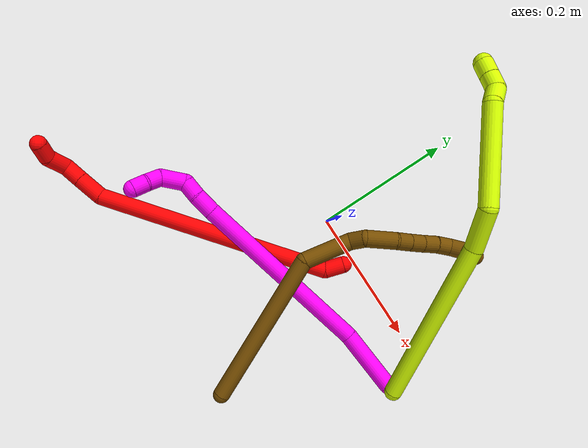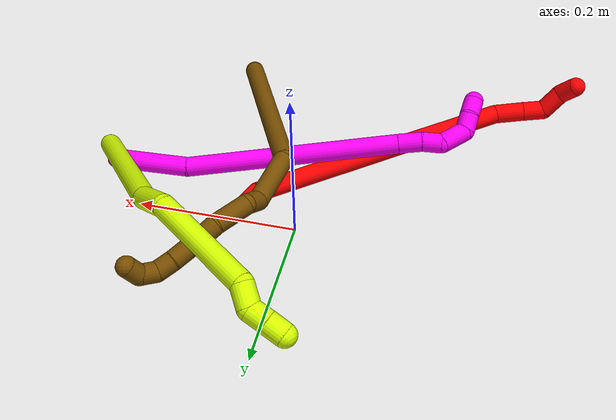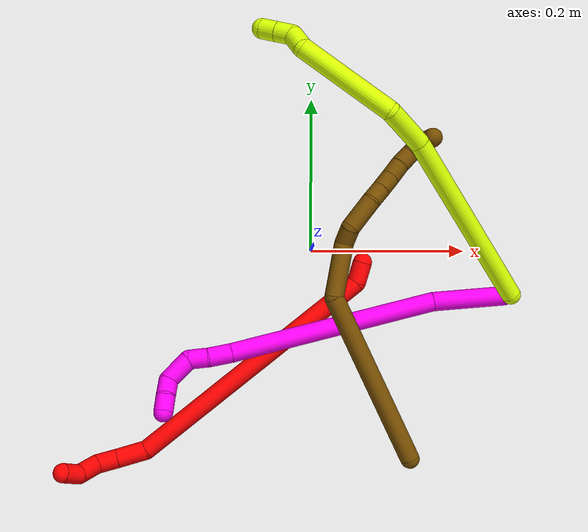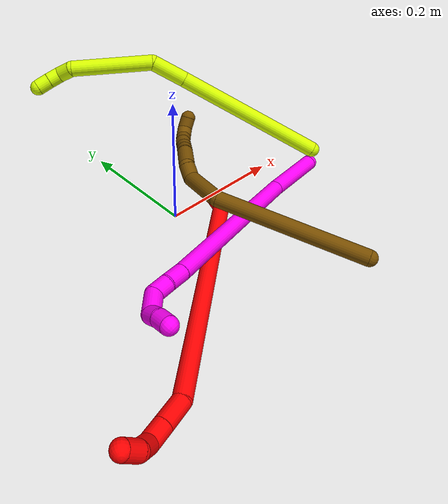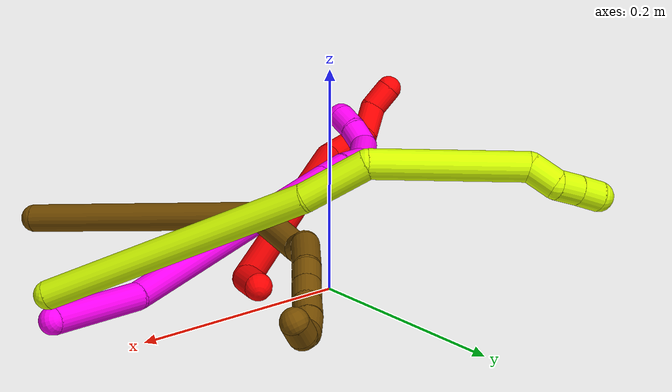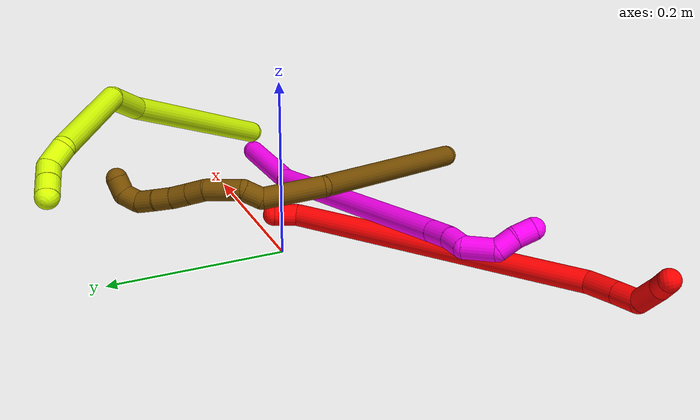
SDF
<sdf version="1.7">
 <world name="default">
  <model name="2">
   <static>0</static>
   <link name="2">
    <collision name="collision-cylinder-e_1_1_4">
     <pose>0.003187 -0.005518 0.012371 0.419567 0.231085 0.049412</pose>
     <geometry><cylinder><radius>0.0125</radius><length>0.027832</length></cylinder></geometry>
     <surface>
      <friction><ode><mu>1.16</mu><mu2>1.16</mu2><slip1>0</slip1><slip2>0</slip2></ode></friction>
      <contact><ode><kp>1e+06</kp><kd>1</kd><max_vel>0</max_vel><min_depth>0.001</min_depth></ode></contact>
     </surface>
    </collision>
    <visual name="visual-cylinder-e_1_1_4">
     <pose>0.003187 -0.005518 0.012371 0.419567 0.231085 0.049412</pose>
     <geometry><cylinder><radius>0.0125</radius><length>0.027832</length></cylinder></geometry>
     <material><ambient>1 0 0 1</ambient></material>
    </visual>
    <collision name="collision-cylinder-e_2_4_5">
     <pose>-0.052837 -0.045194 0.185352 0.209551 -0.346088 -0.036758</pose>
     <geometry><cylinder><radius>0.0125</radius><length>0.349103</length></cylinder></geometry>
     <surface>
      <friction><ode><mu>1.16</mu><mu2>1.16</mu2><slip1>0</slip1><slip2>0</slip2></ode></friction>
      <contact><ode><kp>1e+06</kp><kd>1</kd><max_vel>0</max_vel><min_depth>0.001</min_depth></ode></contact>
     </surface>
    </collision>
    <visual name="visual-cylinder-e_2_4_5">
     <pose>-0.052837 -0.045194 0.185352 0.209551 -0.346088 -0.036758</pose>
     <geometry><cylinder><radius>0.0125</radius><length>0.349103</length></cylinder></geometry>
     <material><ambient>1 0 0 1</ambient></material>
    </visual>
    <collision name="collision-cylinder-e_3_5_6">
     <pose>-0.124274 -0.079063 0.360555 -0.019701 -0.697224 0.007161</pose>
     <geometry><cylinder><radius>0.0125</radius><length>0.03808</length></cylinder></geometry>
     <surface>
      <friction><ode><mu>1.16</mu><mu2>1.16</mu2><slip1>0</slip1><slip2>0</slip2></ode></friction>
      <contact><ode><kp>1e+06</kp><kd>1</kd><max_vel>0</max_vel><min_depth>0.001</min_depth></ode></contact>
     </surface>
    </collision>
    <visual name="visual-cylinder-e_3_5_6">
     <pose>-0.124274 -0.079063 0.360555 -0.019701 -0.697224 0.007161</pose>
     <geometry><cylinder><radius>0.0125</radius><length>0.03808</length></cylinder></geometry>
     <material><ambient>1 0 0 1</ambient></material>
    </visual>
    <collision name="collision-cylinder-e_4_6_7">
     <pose>-0.145666 -0.078719 0.385687 -0.005376 -0.715922 0.002011</pose>
     <geometry><cylinder><radius>0.0125</radius><length>0.027936</length></cylinder></geometry>
     <surface>
      <friction><ode><mu>1.16</mu><mu2>1.16</mu2><slip1>0</slip1><slip2>0</slip2></ode></friction>
      <contact><ode><kp>1e+06</kp><kd>1</kd><max_vel>0</max_vel><min_depth>0.001</min_depth></ode></contact>
     </surface>
    </collision>
    <visual name="visual-cylinder-e_4_6_7">
     <pose>-0.145666 -0.078719 0.385687 -0.005376 -0.715922 0.002011</pose>
     <geometry><cylinder><radius>0.0125</radius><length>0.027936</length></cylinder></geometry>
     <material><ambient>1 0 0 1</ambient></material>
    </visual>
    <collision name="collision-cylinder-e_5_7_8">
     <pose>-0.157589 -0.069385 0.408809 -0.635322 -0.17445 0.057489</pose>
     <geometry><cylinder><radius>0.0125</radius><length>0.03175</length></cylinder></geometry>
     <surface>
      <friction><ode><mu>1.16</mu><mu2>1.16</mu2><slip1>0</slip1><slip2>0</slip2></ode></friction>
      <contact><ode><kp>1e+06</kp><kd>1</kd><max_vel>0</max_vel><min_depth>0.001</min_depth></ode></contact>
     </surface>
    </collision>
    <visual name="visual-cylinder-e_5_7_8">
     <pose>-0.157589 -0.069385 0.408809 -0.635322 -0.17445 0.057489</pose>
     <geometry><cylinder><radius>0.0125</radius><length>0.03175</length></cylinder></geometry>
     <material><ambient>1 0 0 1</ambient></material>
    </visual>
    <collision name="collision-cylinder-e_6_8_2">
     <pose>-0.166575 -0.050784 0.427248 -1.01003 -0.515039 0.289164</pose>
     <geometry><cylinder><radius>0.0125</radius><length>0.0253</length></cylinder></geometry>
     <surface>
      <friction><ode><mu>1.16</mu><mu2>1.16</mu2><slip1>0</slip1><slip2>0</slip2></ode></friction>
      <contact><ode><kp>1e+06</kp><kd>1</kd><max_vel>0</max_vel><min_depth>0.001</min_depth></ode></contact>
     </surface>
    </collision>
    <visual name="visual-cylinder-e_6_8_2">
     <pose>-0.166575 -0.050784 0.427248 -1.01003 -0.515039 0.289164</pose>
     <geometry><cylinder><radius>0.0125</radius><length>0.0253</length></cylinder></geometry>
     <material><ambient>1 0 0 1</ambient></material>
    </visual>
    <collision name="collision-sphere-2">
     <pose>-0.172806 -0.041461 0.433103 0 -0 0</pose>
     <geometry><sphere><radius>0.0125</radius></sphere></geometry>
     <surface>
      <friction><ode><mu>1.16</mu><mu2>1.16</mu2><slip1>0</slip1><slip2>0</slip2></ode></friction>
      <contact><ode><kp>1e+06</kp><kd>1</kd><max_vel>0</max_vel><min_depth>0.001</min_depth></ode></contact>
     </surface>
    </collision>
    <visual name="visual-sphere-2">
     <pose>-0.172806 -0.041461 0.433103 0 -0 0</pose>
     <geometry><sphere><radius>0.0125</radius></sphere></geometry>
     <material><ambient>1 0 0 1</ambient></material>
    </visual>
    <collision name="collision-sphere-4">
     <pose>0.006374 -0.011036 0.024742 0 -0 0</pose>
     <geometry><sphere><radius>0.0125</radius></sphere></geometry>
     <surface>
      <friction><ode><mu>1.16</mu><mu2>1.16</mu2><slip1>0</slip1><slip2>0</slip2></ode></friction>
      <contact><ode><kp>1e+06</kp><kd>1</kd><max_vel>0</max_vel><min_depth>0.001</min_depth></ode></contact>
     </surface>
    </collision>
    <visual name="visual-sphere-4">
     <pose>0.006374 -0.011036 0.024742 0 -0 0</pose>
     <geometry><sphere><radius>0.0125</radius></sphere></geometry>
     <material><ambient>1 0 0 1</ambient></material>
    </visual>
    <collision name="collision-sphere-1">
     <geometry><sphere><radius>0.0125</radius></sphere></geometry>
     <surface>
      <friction><ode><mu>1.16</mu><mu2>1.16</mu2><slip1>0</slip1><slip2>0</slip2></ode></friction>
      <contact><ode><kp>1e+06</kp><kd>1</kd><max_vel>0</max_vel><min_depth>0.001</min_depth></ode></contact>
     </surface>
    </collision>
    <visual name="visual-sphere-1">
     <geometry><sphere><radius>0.0125</radius></sphere></geometry>
     <material><ambient>1 0 0 1</ambient></material>
    </visual>
    <collision name="collision-sphere-8">
     <pose>-0.160344 -0.060107 0.421393 0 -0 0</pose>
     <geometry><sphere><radius>0.0125</radius></sphere></geometry>
     <surface>
      <friction><ode><mu>1.16</mu><mu2>1.16</mu2><slip1>0</slip1><slip2>0</slip2></ode></friction>
      <contact><ode><kp>1e+06</kp><kd>1</kd><max_vel>0</max_vel><min_depth>0.001</min_depth></ode></contact>
     </surface>
    </collision>
    <visual name="visual-sphere-8">
     <pose>-0.160344 -0.060107 0.421393 0 -0 0</pose>
     <geometry><sphere><radius>0.0125</radius></sphere></geometry>
     <material><ambient>1 0 0 1</ambient></material>
    </visual>
    <collision name="collision-sphere-5">
     <pose>-0.112048 -0.079351 0.345961 0 -0 0</pose>
     <geometry><sphere><radius>0.0125</radius></sphere></geometry>
     <surface>
      <friction><ode><mu>1.16</mu><mu2>1.16</mu2><slip1>0</slip1><slip2>0</slip2></ode></friction>
      <contact><ode><kp>1e+06</kp><kd>1</kd><max_vel>0</max_vel><min_depth>0.001</min_depth></ode></contact>
     </surface>
    </collision>
    <visual name="visual-sphere-5">
     <pose>-0.112048 -0.079351 0.345961 0 -0 0</pose>
     <geometry><sphere><radius>0.0125</radius></sphere></geometry>
     <material><ambient>1 0 0 1</ambient></material>
    </visual>
    <collision name="collision-sphere-6">
     <pose>-0.136499 -0.078776 0.375149 0 -0 0</pose>
     <geometry><sphere><radius>0.0125</radius></sphere></geometry>
     <surface>
      <friction><ode><mu>1.16</mu><mu2>1.16</mu2><slip1>0</slip1><slip2>0</slip2></ode></friction>
      <contact><ode><kp>1e+06</kp><kd>1</kd><max_vel>0</max_vel><min_depth>0.001</min_depth></ode></contact>
     </surface>
    </collision>
    <visual name="visual-sphere-6">
     <pose>-0.136499 -0.078776 0.375149 0 -0 0</pose>
     <geometry><sphere><radius>0.0125</radius></sphere></geometry>
     <material><ambient>1 0 0 1</ambient></material>
    </visual>
    <collision name="collision-sphere-7">
     <pose>-0.154834 -0.078663 0.396226 0 -0 0</pose>
     <geometry><sphere><radius>0.0125</radius></sphere></geometry>
     <surface>
      <friction><ode><mu>1.16</mu><mu2>1.16</mu2><slip1>0</slip1><slip2>0</slip2></ode></friction>
      <contact><ode><kp>1e+06</kp><kd>1</kd><max_vel>0</max_vel><min_depth>0.001</min_depth></ode></contact>
     </surface>
    </collision>
    <visual name="visual-sphere-7">
     <pose>-0.154834 -0.078663 0.396226 0 -0 0</pose>
     <geometry><sphere><radius>0.0125</radius></sphere></geometry>
     <material><ambient>1 0 0 1</ambient></material>
    </visual>
    <inertial>
     <pose>-0.072753 -0.049257 0.226689 0 -0 0</pose>
     <mass>0.5</mass>
     <inertia>
      <ixx>0.003226</ixx>
      <ixy>0</ixy>
      <ixz>0</ixz>
      <iyy>0.003379</iyy>
      <iyz>0</iyz>
      <izz>0.001942</izz>
     </inertia>
    </inertial>
   </link>
   <pose>0.067008 -0.015448 0.013324 1.27621 -0.231324 -0.541096</pose>
  </model>
  <model name="10">
   <static>0</static>
   <link name="10">
    <collision name="collision-cylinder-e_1_1_4">
     <pose>-0.04623 -0.003221 0.003033 0.815415 -1.47538 -0.748128</pose>
     <geometry><cylinder><radius>0.0125</radius><length>0.092882</length></cylinder></geometry>
     <surface>
      <friction><ode><mu>1.16</mu><mu2>1.16</mu2><slip1>0</slip1><slip2>0</slip2></ode></friction>
      <contact><ode><kp>1e+06</kp><kd>1</kd><max_vel>0</max_vel><min_depth>0.001</min_depth></ode></contact>
     </surface>
    </collision>
    <visual name="visual-cylinder-e_1_1_4">
     <pose>-0.04623 -0.003221 0.003033 0.815415 -1.47538 -0.748128</pose>
     <geometry><cylinder><radius>0.0125</radius><length>0.092882</length></cylinder></geometry>
     <material><ambient>1 0 0.964706 1</ambient></material>
    </visual>
    <collision name="collision-cylinder-e_2_4_5">
     <pose>-0.223061 -0.044155 0.003793 1.63101 -1.2892 -1.34753</pose>
     <geometry><cylinder><radius>0.0125</radius><length>0.271912</length></cylinder></geometry>
     <surface>
      <friction><ode><mu>1.16</mu><mu2>1.16</mu2><slip1>0</slip1><slip2>0</slip2></ode></friction>
      <contact><ode><kp>1e+06</kp><kd>1</kd><max_vel>0</max_vel><min_depth>0.001</min_depth></ode></contact>
     </surface>
    </collision>
    <visual name="visual-cylinder-e_2_4_5">
     <pose>-0.223061 -0.044155 0.003793 1.63101 -1.2892 -1.34753</pose>
     <geometry><cylinder><radius>0.0125</radius><length>0.271912</length></cylinder></geometry>
     <material><ambient>1 0 0.964706 1</ambient></material>
    </visual>
    <collision name="collision-cylinder-e_3_5_6">
     <pose>-0.368104 -0.085945 0.002155 1.41609 -1.29244 -1.14677</pose>
     <geometry><cylinder><radius>0.0125</radius><length>0.030041</length></cylinder></geometry>
     <surface>
      <friction><ode><mu>1.16</mu><mu2>1.16</mu2><slip1>0</slip1><slip2>0</slip2></ode></friction>
      <contact><ode><kp>1e+06</kp><kd>1</kd><max_vel>0</max_vel><min_depth>0.001</min_depth></ode></contact>
     </surface>
    </collision>
    <visual name="visual-cylinder-e_3_5_6">
     <pose>-0.368104 -0.085945 0.002155 1.41609 -1.29244 -1.14677</pose>
     <geometry><cylinder><radius>0.0125</radius><length>0.030041</length></cylinder></geometry>
     <material><ambient>1 0 0.964706 1</ambient></material>
    </visual>
    <collision name="collision-cylinder-e_4_6_7">
     <pose>-0.394839 -0.091197 0.003468 1.04783 -1.461 -0.95522</pose>
     <geometry><cylinder><radius>0.0125</radius><length>0.024733</length></cylinder></geometry>
     <surface>
      <friction><ode><mu>1.16</mu><mu2>1.16</mu2><slip1>0</slip1><slip2>0</slip2></ode></friction>
      <contact><ode><kp>1e+06</kp><kd>1</kd><max_vel>0</max_vel><min_depth>0.001</min_depth></ode></contact>
     </surface>
    </collision>
    <visual name="visual-cylinder-e_4_6_7">
     <pose>-0.394839 -0.091197 0.003468 1.04783 -1.461 -0.95522</pose>
     <geometry><cylinder><radius>0.0125</radius><length>0.024733</length></cylinder></geometry>
     <material><ambient>1 0 0.964706 1</ambient></material>
    </visual>
    <collision name="collision-cylinder-e_5_7_8">
     <pose>-0.420914 -0.100197 -0.004826 2.42425 -0.858352 -1.76892</pose>
     <geometry><cylinder><radius>0.0125</radius><length>0.036424</length></cylinder></geometry>
     <surface>
      <friction><ode><mu>1.16</mu><mu2>1.16</mu2><slip1>0</slip1><slip2>0</slip2></ode></friction>
      <contact><ode><kp>1e+06</kp><kd>1</kd><max_vel>0</max_vel><min_depth>0.001</min_depth></ode></contact>
     </surface>
    </collision>
    <visual name="visual-cylinder-e_5_7_8">
     <pose>-0.420914 -0.100197 -0.004826 2.42425 -0.858352 -1.76892</pose>
     <geometry><cylinder><radius>0.0125</radius><length>0.036424</length></cylinder></geometry>
     <material><ambient>1 0 0.964706 1</ambient></material>
    </visual>
    <collision name="collision-cylinder-e_6_8_9">
     <pose>-0.436163 -0.117509 -0.019585 2.1186 -0.131313 -0.233209</pose>
     <geometry><cylinder><radius>0.0125</radius><length>0.022417</length></cylinder></geometry>
     <surface>
      <friction><ode><mu>1.16</mu><mu2>1.16</mu2><slip1>0</slip1><slip2>0</slip2></ode></friction>
      <contact><ode><kp>1e+06</kp><kd>1</kd><max_vel>0</max_vel><min_depth>0.001</min_depth></ode></contact>
     </surface>
    </collision>
    <visual name="visual-cylinder-e_6_8_9">
     <pose>-0.436163 -0.117509 -0.019585 2.1186 -0.131313 -0.233209</pose>
     <geometry><cylinder><radius>0.0125</radius><length>0.022417</length></cylinder></geometry>
     <material><ambient>1 0 0.964706 1</ambient></material>
    </visual>
    <collision name="collision-cylinder-e_7_9_2">
     <pose>-0.439504 -0.134607 -0.032793 2.34351 -0.174416 -0.408894</pose>
     <geometry><cylinder><radius>0.0125</radius><length>0.02159</length></cylinder></geometry>
     <surface>
      <friction><ode><mu>1.16</mu><mu2>1.16</mu2><slip1>0</slip1><slip2>0</slip2></ode></friction>
      <contact><ode><kp>1e+06</kp><kd>1</kd><max_vel>0</max_vel><min_depth>0.001</min_depth></ode></contact>
     </surface>
    </collision>
    <visual name="visual-cylinder-e_7_9_2">
     <pose>-0.439504 -0.134607 -0.032793 2.34351 -0.174416 -0.408894</pose>
     <geometry><cylinder><radius>0.0125</radius><length>0.02159</length></cylinder></geometry>
     <material><ambient>1 0 0.964706 1</ambient></material>
    </visual>
    <collision name="collision-sphere-2">
     <pose>-0.441378 -0.142219 -0.040215 0 -0 0</pose>
     <geometry><sphere><radius>0.0125</radius></sphere></geometry>
     <surface>
      <friction><ode><mu>1.16</mu><mu2>1.16</mu2><slip1>0</slip1><slip2>0</slip2></ode></friction>
      <contact><ode><kp>1e+06</kp><kd>1</kd><max_vel>0</max_vel><min_depth>0.001</min_depth></ode></contact>
     </surface>
    </collision>
    <visual name="visual-sphere-2">
     <pose>-0.441378 -0.142219 -0.040215 0 -0 0</pose>
     <geometry><sphere><radius>0.0125</radius></sphere></geometry>
     <material><ambient>1 0 0.964706 1</ambient></material>
    </visual>
    <collision name="collision-sphere-9">
     <pose>-0.437631 -0.126995 -0.025372 0 -0 0</pose>
     <geometry><sphere><radius>0.0125</radius></sphere></geometry>
     <surface>
      <friction><ode><mu>1.16</mu><mu2>1.16</mu2><slip1>0</slip1><slip2>0</slip2></ode></friction>
      <contact><ode><kp>1e+06</kp><kd>1</kd><max_vel>0</max_vel><min_depth>0.001</min_depth></ode></contact>
     </surface>
    </collision>
    <visual name="visual-sphere-9">
     <pose>-0.437631 -0.126995 -0.025372 0 -0 0</pose>
     <geometry><sphere><radius>0.0125</radius></sphere></geometry>
     <material><ambient>1 0 0.964706 1</ambient></material>
    </visual>
    <collision name="collision-sphere-4">
     <pose>-0.09246 -0.006442 0.006067 0 -0 0</pose>
     <geometry><sphere><radius>0.0125</radius></sphere></geometry>
     <surface>
      <friction><ode><mu>1.16</mu><mu2>1.16</mu2><slip1>0</slip1><slip2>0</slip2></ode></friction>
      <contact><ode><kp>1e+06</kp><kd>1</kd><max_vel>0</max_vel><min_depth>0.001</min_depth></ode></contact>
     </surface>
    </collision>
    <visual name="visual-sphere-4">
     <pose>-0.09246 -0.006442 0.006067 0 -0 0</pose>
     <geometry><sphere><radius>0.0125</radius></sphere></geometry>
     <material><ambient>1 0 0.964706 1</ambient></material>
    </visual>
    <collision name="collision-sphere-1">
     <geometry><sphere><radius>0.0125</radius></sphere></geometry>
     <surface>
      <friction><ode><mu>1.16</mu><mu2>1.16</mu2><slip1>0</slip1><slip2>0</slip2></ode></friction>
      <contact><ode><kp>1e+06</kp><kd>1</kd><max_vel>0</max_vel><min_depth>0.001</min_depth></ode></contact>
     </surface>
    </collision>
    <visual name="visual-sphere-1">
     <geometry><sphere><radius>0.0125</radius></sphere></geometry>
     <material><ambient>1 0 0.964706 1</ambient></material>
    </visual>
    <collision name="collision-sphere-8">
     <pose>-0.434696 -0.108023 -0.013797 0 -0 0</pose>
     <geometry><sphere><radius>0.0125</radius></sphere></geometry>
     <surface>
      <friction><ode><mu>1.16</mu><mu2>1.16</mu2><slip1>0</slip1><slip2>0</slip2></ode></friction>
      <contact><ode><kp>1e+06</kp><kd>1</kd><max_vel>0</max_vel><min_depth>0.001</min_depth></ode></contact>
     </surface>
    </collision>
    <visual name="visual-sphere-8">
     <pose>-0.434696 -0.108023 -0.013797 0 -0 0</pose>
     <geometry><sphere><radius>0.0125</radius></sphere></geometry>
     <material><ambient>1 0 0.964706 1</ambient></material>
    </visual>
    <collision name="collision-sphere-5">
     <pose>-0.353662 -0.081867 0.001519 0 -0 0</pose>
     <geometry><sphere><radius>0.0125</radius></sphere></geometry>
     <surface>
      <friction><ode><mu>1.16</mu><mu2>1.16</mu2><slip1>0</slip1><slip2>0</slip2></ode></friction>
      <contact><ode><kp>1e+06</kp><kd>1</kd><max_vel>0</max_vel><min_depth>0.001</min_depth></ode></contact>
     </surface>
    </collision>
    <visual name="visual-sphere-5">
     <pose>-0.353662 -0.081867 0.001519 0 -0 0</pose>
     <geometry><sphere><radius>0.0125</radius></sphere></geometry>
     <material><ambient>1 0 0.964706 1</ambient></material>
    </visual>
    <collision name="collision-sphere-6">
     <pose>-0.382547 -0.090023 0.002791 0 -0 0</pose>
     <geometry><sphere><radius>0.0125</radius></sphere></geometry>
     <surface>
      <friction><ode><mu>1.16</mu><mu2>1.16</mu2><slip1>0</slip1><slip2>0</slip2></ode></friction>
      <contact><ode><kp>1e+06</kp><kd>1</kd><max_vel>0</max_vel><min_depth>0.001</min_depth></ode></contact>
     </surface>
    </collision>
    <visual name="visual-sphere-6">
     <pose>-0.382547 -0.090023 0.002791 0 -0 0</pose>
     <geometry><sphere><radius>0.0125</radius></sphere></geometry>
     <material><ambient>1 0 0.964706 1</ambient></material>
    </visual>
    <collision name="collision-sphere-7">
     <pose>-0.407131 -0.092371 0.004145 0 -0 0</pose>
     <geometry><sphere><radius>0.0125</radius></sphere></geometry>
     <surface>
      <friction><ode><mu>1.16</mu><mu2>1.16</mu2><slip1>0</slip1><slip2>0</slip2></ode></friction>
      <contact><ode><kp>1e+06</kp><kd>1</kd><max_vel>0</max_vel><min_depth>0.001</min_depth></ode></contact>
     </surface>
    </collision>
    <visual name="visual-sphere-7">
     <pose>-0.407131 -0.092371 0.004145 0 -0 0</pose>
     <geometry><sphere><radius>0.0125</radius></sphere></geometry>
     <material><ambient>1 0 0.964706 1</ambient></material>
    </visual>
    <inertial>
     <pose>-0.240737 -0.052666 0.000281 0 -0 0</pose>
     <mass>0.5</mass>
     <inertia>
      <ixx>-0.00039</ixx>
      <ixy>0</ixy>
      <ixz>0</ixz>
      <iyy>0.001153</iyy>
      <iyz>0</iyz>
      <izz>0.002175</izz>
     </inertia>
    </inertial>
   </link>
   <pose>0.251628 -0.058437 0.014696 -1.13408 -0.122734 0.115239</pose>
  </model>
  <model name="12">
   <static>0</static>
   <link name="12">
    <collision name="collision-cylinder-e_1_1_4">
     <pose>-0.030357 0.103913 -0.042942 -1.96267 -0.263706 0.391535</pose>
     <geometry><cylinder><radius>0.0125</radius><length>0.232925</length></cylinder></geometry>
     <surface>
      <friction><ode><mu>1.16</mu><mu2>1.16</mu2><slip1>0</slip1><slip2>0</slip2></ode></friction>
      <contact><ode><kp>1e+06</kp><kd>1</kd><max_vel>0</max_vel><min_depth>0.001</min_depth></ode></contact>
     </surface>
    </collision>
    <visual name="visual-cylinder-e_1_1_4">
     <pose>-0.030357 0.103913 -0.042942 -1.96267 -0.263706 0.391535</pose>
     <geometry><cylinder><radius>0.0125</radius><length>0.232925</length></cylinder></geometry>
     <material><ambient>0.466667 0.301961 0 1</ambient></material>
    </visual>
    <collision name="collision-cylinder-e_2_4_5">
     <pose>-0.047425 0.234933 -0.105276 -2.19176 0.379436 -0.714867</pose>
     <geometry><cylinder><radius>0.0125</radius><length>0.07176</length></cylinder></geometry>
     <surface>
      <friction><ode><mu>1.16</mu><mu2>1.16</mu2><slip1>0</slip1><slip2>0</slip2></ode></friction>
      <contact><ode><kp>1e+06</kp><kd>1</kd><max_vel>0</max_vel><min_depth>0.001</min_depth></ode></contact>
     </surface>
    </collision>
    <visual name="visual-cylinder-e_2_4_5">
     <pose>-0.047425 0.234933 -0.105276 -2.19176 0.379436 -0.714867</pose>
     <geometry><cylinder><radius>0.0125</radius><length>0.07176</length></cylinder></geometry>
     <material><ambient>0.466667 0.301961 0 1</ambient></material>
    </visual>
    <collision name="collision-cylinder-e_3_5_6">
     <pose>-0.029022 0.272272 -0.124136 -1.51898 0.462783 -0.440169</pose>
     <geometry><cylinder><radius>0.0125</radius><length>0.022904</length></cylinder></geometry>
     <surface>
      <friction><ode><mu>1.16</mu><mu2>1.16</mu2><slip1>0</slip1><slip2>0</slip2></ode></friction>
      <contact><ode><kp>1e+06</kp><kd>1</kd><max_vel>0</max_vel><min_depth>0.001</min_depth></ode></contact>
     </surface>
    </collision>
    <visual name="visual-cylinder-e_3_5_6">
     <pose>-0.029022 0.272272 -0.124136 -1.51898 0.462783 -0.440169</pose>
     <geometry><cylinder><radius>0.0125</radius><length>0.022904</length></cylinder></geometry>
     <material><ambient>0.466667 0.301961 0 1</ambient></material>
    </visual>
    <collision name="collision-cylinder-e_4_6_7">
     <pose>-0.007265 0.294568 -0.131911 -2.1738 0.849204 -1.42078</pose>
     <geometry><cylinder><radius>0.0125</radius><length>0.044341</length></cylinder></geometry>
     <surface>
      <friction><ode><mu>1.16</mu><mu2>1.16</mu2><slip1>0</slip1><slip2>0</slip2></ode></friction>
      <contact><ode><kp>1e+06</kp><kd>1</kd><max_vel>0</max_vel><min_depth>0.001</min_depth></ode></contact>
     </surface>
    </collision>
    <visual name="visual-cylinder-e_4_6_7">
     <pose>-0.007265 0.294568 -0.131911 -2.1738 0.849204 -1.42078</pose>
     <geometry><cylinder><radius>0.0125</radius><length>0.044341</length></cylinder></geometry>
     <material><ambient>0.466667 0.301961 0 1</ambient></material>
    </visual>
    <collision name="collision-cylinder-e_5_7_8">
     <pose>0.017314 0.310501 -0.146165 -2.56474 0.841095 -1.9701</pose>
     <geometry><cylinder><radius>0.0125</radius><length>0.021292</length></cylinder></geometry>
     <surface>
      <friction><ode><mu>1.16</mu><mu2>1.16</mu2><slip1>0</slip1><slip2>0</slip2></ode></friction>
      <contact><ode><kp>1e+06</kp><kd>1</kd><max_vel>0</max_vel><min_depth>0.001</min_depth></ode></contact>
     </surface>
    </collision>
    <visual name="visual-cylinder-e_5_7_8">
     <pose>0.017314 0.310501 -0.146165 -2.56474 0.841095 -1.9701</pose>
     <geometry><cylinder><radius>0.0125</radius><length>0.021292</length></cylinder></geometry>
     <material><ambient>0.466667 0.301961 0 1</ambient></material>
    </visual>
    <collision name="collision-cylinder-e_6_8_9">
     <pose>0.033237 0.31854 -0.158177 -2.53935 0.826375 -1.90896</pose>
     <geometry><cylinder><radius>0.0125</radius><length>0.021719</length></cylinder></geometry>
     <surface>
      <friction><ode><mu>1.16</mu><mu2>1.16</mu2><slip1>0</slip1><slip2>0</slip2></ode></friction>
      <contact><ode><kp>1e+06</kp><kd>1</kd><max_vel>0</max_vel><min_depth>0.001</min_depth></ode></contact>
     </surface>
    </collision>
    <visual name="visual-cylinder-e_6_8_9">
     <pose>0.033237 0.31854 -0.158177 -2.53935 0.826375 -1.90896</pose>
     <geometry><cylinder><radius>0.0125</radius><length>0.021719</length></cylinder></geometry>
     <material><ambient>0.466667 0.301961 0 1</ambient></material>
    </visual>
    <collision name="collision-cylinder-e_7_9_10">
     <pose>0.049221 0.327873 -0.169581 -2.37298 0.822173 -1.64576</pose>
     <geometry><cylinder><radius>0.0125</radius><length>0.021832</length></cylinder></geometry>
     <surface>
      <friction><ode><mu>1.16</mu><mu2>1.16</mu2><slip1>0</slip1><slip2>0</slip2></ode></friction>
      <contact><ode><kp>1e+06</kp><kd>1</kd><max_vel>0</max_vel><min_depth>0.001</min_depth></ode></contact>
     </surface>
    </collision>
    <visual name="visual-cylinder-e_7_9_10">
     <pose>0.049221 0.327873 -0.169581 -2.37298 0.822173 -1.64576</pose>
     <geometry><cylinder><radius>0.0125</radius><length>0.021832</length></cylinder></geometry>
     <material><ambient>0.466667 0.301961 0 1</ambient></material>
    </visual>
    <collision name="collision-cylinder-e_8_10_11">
     <pose>0.066084 0.337271 -0.179998 -2.44645 0.930183 -1.89098</pose>
     <geometry><cylinder><radius>0.0125</radius><length>0.022115</length></cylinder></geometry>
     <surface>
      <friction><ode><mu>1.16</mu><mu2>1.16</mu2><slip1>0</slip1><slip2>0</slip2></ode></friction>
      <contact><ode><kp>1e+06</kp><kd>1</kd><max_vel>0</max_vel><min_depth>0.001</min_depth></ode></contact>
     </surface>
    </collision>
    <visual name="visual-cylinder-e_8_10_11">
     <pose>0.066084 0.337271 -0.179998 -2.44645 0.930183 -1.89098</pose>
     <geometry><cylinder><radius>0.0125</radius><length>0.022115</length></cylinder></geometry>
     <material><ambient>0.466667 0.301961 0 1</ambient></material>
    </visual>
    <collision name="collision-cylinder-e_9_11_12">
     <pose>0.083416 0.347738 -0.184665 -1.50532 0.93513 -0.883443</pose>
     <geometry><cylinder><radius>0.0125</radius><length>0.021046</length></cylinder></geometry>
     <surface>
      <friction><ode><mu>1.16</mu><mu2>1.16</mu2><slip1>0</slip1><slip2>0</slip2></ode></friction>
      <contact><ode><kp>1e+06</kp><kd>1</kd><max_vel>0</max_vel><min_depth>0.001</min_depth></ode></contact>
     </surface>
    </collision>
    <visual name="visual-cylinder-e_9_11_12">
     <pose>0.083416 0.347738 -0.184665 -1.50532 0.93513 -0.883443</pose>
     <geometry><cylinder><radius>0.0125</radius><length>0.021046</length></cylinder></geometry>
     <material><ambient>0.466667 0.301961 0 1</ambient></material>
    </visual>
    <collision name="collision-cylinder-e_10_12_2">
     <pose>0.097365 0.359062 -0.17757 -0.650709 0.577988 -0.199927</pose>
     <geometry><cylinder><radius>0.0125</radius><length>0.020066</length></cylinder></geometry>
     <surface>
      <friction><ode><mu>1.16</mu><mu2>1.16</mu2><slip1>0</slip1><slip2>0</slip2></ode></friction>
      <contact><ode><kp>1e+06</kp><kd>1</kd><max_vel>0</max_vel><min_depth>0.001</min_depth></ode></contact>
     </surface>
    </collision>
    <visual name="visual-cylinder-e_10_12_2">
     <pose>0.097365 0.359062 -0.17757 -0.650709 0.577988 -0.199927</pose>
     <geometry><cylinder><radius>0.0125</radius><length>0.020066</length></cylinder></geometry>
     <material><ambient>0.466667 0.301961 0 1</ambient></material>
    </visual>
    <collision name="collision-sphere-2">
     <pose>0.102847 0.364153 -0.170883 0 -0 0</pose>
     <geometry><sphere><radius>0.0125</radius></sphere></geometry>
     <surface>
      <friction><ode><mu>1.16</mu><mu2>1.16</mu2><slip1>0</slip1><slip2>0</slip2></ode></friction>
      <contact><ode><kp>1e+06</kp><kd>1</kd><max_vel>0</max_vel><min_depth>0.001</min_depth></ode></contact>
     </surface>
    </collision>
    <visual name="visual-sphere-2">
     <pose>0.102847 0.364153 -0.170883 0 -0 0</pose>
     <geometry><sphere><radius>0.0125</radius></sphere></geometry>
     <material><ambient>0.466667 0.301961 0 1</ambient></material>
    </visual>
    <collision name="collision-sphere-12">
     <pose>0.091884 0.353972 -0.184256 0 -0 0</pose>
     <geometry><sphere><radius>0.0125</radius></sphere></geometry>
     <surface>
      <friction><ode><mu>1.16</mu><mu2>1.16</mu2><slip1>0</slip1><slip2>0</slip2></ode></friction>
      <contact><ode><kp>1e+06</kp><kd>1</kd><max_vel>0</max_vel><min_depth>0.001</min_depth></ode></contact>
     </surface>
    </collision>
    <visual name="visual-sphere-12">
     <pose>0.091884 0.353972 -0.184256 0 -0 0</pose>
     <geometry><sphere><radius>0.0125</radius></sphere></geometry>
     <material><ambient>0.466667 0.301961 0 1</ambient></material>
    </visual>
    <collision name="collision-sphere-11">
     <pose>0.074949 0.341504 -0.185073 0 -0 0</pose>
     <geometry><sphere><radius>0.0125</radius></sphere></geometry>
     <surface>
      <friction><ode><mu>1.16</mu><mu2>1.16</mu2><slip1>0</slip1><slip2>0</slip2></ode></friction>
      <contact><ode><kp>1e+06</kp><kd>1</kd><max_vel>0</max_vel><min_depth>0.001</min_depth></ode></contact>
     </surface>
    </collision>
    <visual name="visual-sphere-11">
     <pose>0.074949 0.341504 -0.185073 0 -0 0</pose>
     <geometry><sphere><radius>0.0125</radius></sphere></geometry>
     <material><ambient>0.466667 0.301961 0 1</ambient></material>
    </visual>
    <collision name="collision-sphere-10">
     <pose>0.057218 0.333038 -0.174923 0 -0 0</pose>
     <geometry><sphere><radius>0.0125</radius></sphere></geometry>
     <surface>
      <friction><ode><mu>1.16</mu><mu2>1.16</mu2><slip1>0</slip1><slip2>0</slip2></ode></friction>
      <contact><ode><kp>1e+06</kp><kd>1</kd><max_vel>0</max_vel><min_depth>0.001</min_depth></ode></contact>
     </surface>
    </collision>
    <visual name="visual-sphere-10">
     <pose>0.057218 0.333038 -0.174923 0 -0 0</pose>
     <geometry><sphere><radius>0.0125</radius></sphere></geometry>
     <material><ambient>0.466667 0.301961 0 1</ambient></material>
    </visual>
    <collision name="collision-sphere-9">
     <pose>0.041223 0.322708 -0.16424 0 -0 0</pose>
     <geometry><sphere><radius>0.0125</radius></sphere></geometry>
     <surface>
      <friction><ode><mu>1.16</mu><mu2>1.16</mu2><slip1>0</slip1><slip2>0</slip2></ode></friction>
      <contact><ode><kp>1e+06</kp><kd>1</kd><max_vel>0</max_vel><min_depth>0.001</min_depth></ode></contact>
     </surface>
    </collision>
    <visual name="visual-sphere-9">
     <pose>0.041223 0.322708 -0.16424 0 -0 0</pose>
     <geometry><sphere><radius>0.0125</radius></sphere></geometry>
     <material><ambient>0.466667 0.301961 0 1</ambient></material>
    </visual>
    <collision name="collision-sphere-4">
     <pose>-0.060714 0.207827 -0.085885 0 -0 0</pose>
     <geometry><sphere><radius>0.0125</radius></sphere></geometry>
     <surface>
      <friction><ode><mu>1.16</mu><mu2>1.16</mu2><slip1>0</slip1><slip2>0</slip2></ode></friction>
      <contact><ode><kp>1e+06</kp><kd>1</kd><max_vel>0</max_vel><min_depth>0.001</min_depth></ode></contact>
     </surface>
    </collision>
    <visual name="visual-sphere-4">
     <pose>-0.060714 0.207827 -0.085885 0 -0 0</pose>
     <geometry><sphere><radius>0.0125</radius></sphere></geometry>
     <material><ambient>0.466667 0.301961 0 1</ambient></material>
    </visual>
    <collision name="collision-sphere-1">
     <geometry><sphere><radius>0.0125</radius></sphere></geometry>
     <surface>
      <friction><ode><mu>1.16</mu><mu2>1.16</mu2><slip1>0</slip1><slip2>0</slip2></ode></friction>
      <contact><ode><kp>1e+06</kp><kd>1</kd><max_vel>0</max_vel><min_depth>0.001</min_depth></ode></contact>
     </surface>
    </collision>
    <visual name="visual-sphere-1">
     <geometry><sphere><radius>0.0125</radius></sphere></geometry>
     <material><ambient>0.466667 0.301961 0 1</ambient></material>
    </visual>
    <collision name="collision-sphere-8">
     <pose>0.02525 0.314372 -0.152114 0 -0 0</pose>
     <geometry><sphere><radius>0.0125</radius></sphere></geometry>
     <surface>
      <friction><ode><mu>1.16</mu><mu2>1.16</mu2><slip1>0</slip1><slip2>0</slip2></ode></friction>
      <contact><ode><kp>1e+06</kp><kd>1</kd><max_vel>0</max_vel><min_depth>0.001</min_depth></ode></contact>
     </surface>
    </collision>
    <visual name="visual-sphere-8">
     <pose>0.02525 0.314372 -0.152114 0 -0 0</pose>
     <geometry><sphere><radius>0.0125</radius></sphere></geometry>
     <material><ambient>0.466667 0.301961 0 1</ambient></material>
    </visual>
    <collision name="collision-sphere-5">
     <pose>-0.034135 0.262039 -0.124666 0 -0 0</pose>
     <geometry><sphere><radius>0.0125</radius></sphere></geometry>
     <surface>
      <friction><ode><mu>1.16</mu><mu2>1.16</mu2><slip1>0</slip1><slip2>0</slip2></ode></friction>
      <contact><ode><kp>1e+06</kp><kd>1</kd><max_vel>0</max_vel><min_depth>0.001</min_depth></ode></contact>
     </surface>
    </collision>
    <visual name="visual-sphere-5">
     <pose>-0.034135 0.262039 -0.124666 0 -0 0</pose>
     <geometry><sphere><radius>0.0125</radius></sphere></geometry>
     <material><ambient>0.466667 0.301961 0 1</ambient></material>
    </visual>
    <collision name="collision-sphere-6">
     <pose>-0.02391 0.282506 -0.123605 0 -0 0</pose>
     <geometry><sphere><radius>0.0125</radius></sphere></geometry>
     <surface>
      <friction><ode><mu>1.16</mu><mu2>1.16</mu2><slip1>0</slip1><slip2>0</slip2></ode></friction>
      <contact><ode><kp>1e+06</kp><kd>1</kd><max_vel>0</max_vel><min_depth>0.001</min_depth></ode></contact>
     </surface>
    </collision>
    <visual name="visual-sphere-6">
     <pose>-0.02391 0.282506 -0.123605 0 -0 0</pose>
     <geometry><sphere><radius>0.0125</radius></sphere></geometry>
     <material><ambient>0.466667 0.301961 0 1</ambient></material>
    </visual>
    <collision name="collision-sphere-7">
     <pose>0.009379 0.306631 -0.140216 0 -0 0</pose>
     <geometry><sphere><radius>0.0125</radius></sphere></geometry>
     <surface>
      <friction><ode><mu>1.16</mu><mu2>1.16</mu2><slip1>0</slip1><slip2>0</slip2></ode></friction>
      <contact><ode><kp>1e+06</kp><kd>1</kd><max_vel>0</max_vel><min_depth>0.001</min_depth></ode></contact>
     </surface>
    </collision>
    <visual name="visual-sphere-7">
     <pose>0.009379 0.306631 -0.140216 0 -0 0</pose>
     <geometry><sphere><radius>0.0125</radius></sphere></geometry>
     <material><ambient>0.466667 0.301961 0 1</ambient></material>
    </visual>
    <inertial>
     <pose>-0.00825 0.20606 -0.095858 0 -0 0</pose>
     <mass>0.5</mass>
     <inertia>
      <ixx>0.001342</ixx>
      <ixy>0</ixy>
      <ixz>0</ixz>
      <iyy>0.000114</iyy>
      <iyz>0</iyz>
      <izz>-0.000748</izz>
     </inertia>
    </inertial>
   </link>
   <pose>0.127906 -0.269609 0.020183 0.535887 0.074641 0.191322</pose>
  </model>
  <model name="15">
   <static>0</static>
   <link name="15">
    <collision name="collision-cylinder-e_1_1_4">
     <pose>-0.07555 -0.000661 -0.096473 3.13474 -0.664352 -3.12172</pose>
     <geometry><cylinder><radius>0.0125</radius><length>0.245074</length></cylinder></geometry>
     <surface>
      <friction><ode><mu>1.16</mu><mu2>1.16</mu2><slip1>0</slip1><slip2>0</slip2></ode></friction>
      <contact><ode><kp>1e+06</kp><kd>1</kd><max_vel>0</max_vel><min_depth>0.001</min_depth></ode></contact>
     </surface>
    </collision>
    <visual name="visual-cylinder-e_1_1_4">
     <pose>-0.07555 -0.000661 -0.096473 3.13474 -0.664352 -3.12172</pose>
     <geometry><cylinder><radius>0.0125</radius><length>0.245074</length></cylinder></geometry>
     <material><ambient>0.835294 1 0 1</ambient></material>
    </visual>
    <collision name="collision-cylinder-e_2_4_5">
     <pose>-0.168362 -0.007432 -0.215771 2.88007 -0.630955 -2.37552</pose>
     <geometry><cylinder><radius>0.0125</radius><length>0.058525</length></cylinder></geometry>
     <surface>
      <friction><ode><mu>1.16</mu><mu2>1.16</mu2><slip1>0</slip1><slip2>0</slip2></ode></friction>
      <contact><ode><kp>1e+06</kp><kd>1</kd><max_vel>0</max_vel><min_depth>0.001</min_depth></ode></contact>
     </surface>
    </collision>
    <visual name="visual-cylinder-e_2_4_5">
     <pose>-0.168362 -0.007432 -0.215771 2.88007 -0.630955 -2.37552</pose>
     <geometry><cylinder><radius>0.0125</radius><length>0.058525</length></cylinder></geometry>
     <material><ambient>0.835294 1 0 1</ambient></material>
    </visual>
    <collision name="collision-cylinder-e_3_5_6">
     <pose>-0.191621 -0.016074 -0.303201 3.10241 -0.092481 -2.34044</pose>
     <geometry><cylinder><radius>0.0125</radius><length>0.129864</length></cylinder></geometry>
     <surface>
      <friction><ode><mu>1.16</mu><mu2>1.16</mu2><slip1>0</slip1><slip2>0</slip2></ode></friction>
      <contact><ode><kp>1e+06</kp><kd>1</kd><max_vel>0</max_vel><min_depth>0.001</min_depth></ode></contact>
     </surface>
    </collision>
    <visual name="visual-cylinder-e_3_5_6">
     <pose>-0.191621 -0.016074 -0.303201 3.10241 -0.092481 -2.34044</pose>
     <geometry><cylinder><radius>0.0125</radius><length>0.129864</length></cylinder></geometry>
     <material><ambient>0.835294 1 0 1</ambient></material>
    </visual>
    <collision name="collision-cylinder-e_4_6_7">
     <pose>-0.195129 -0.012738 -0.378726 -2.64848 0.198125 -0.752203</pose>
     <geometry><cylinder><radius>0.0125</radius><length>0.025289</length></cylinder></geometry>
     <surface>
      <friction><ode><mu>1.16</mu><mu2>1.16</mu2><slip1>0</slip1><slip2>0</slip2></ode></friction>
      <contact><ode><kp>1e+06</kp><kd>1</kd><max_vel>0</max_vel><min_depth>0.001</min_depth></ode></contact>
     </surface>
    </collision>
    <visual name="visual-cylinder-e_4_6_7">
     <pose>-0.195129 -0.012738 -0.378726 -2.64848 0.198125 -0.752203</pose>
     <geometry><cylinder><radius>0.0125</radius><length>0.025289</length></cylinder></geometry>
     <material><ambient>0.835294 1 0 1</ambient></material>
    </visual>
    <collision name="collision-cylinder-e_5_7_8">
     <pose>-0.189142 -0.008521 -0.399132 2.96926 0.348515 2.22927</pose>
     <geometry><cylinder><radius>0.0125</radius><length>0.020488</length></cylinder></geometry>
     <surface>
      <friction><ode><mu>1.16</mu><mu2>1.16</mu2><slip1>0</slip1><slip2>0</slip2></ode></friction>
      <contact><ode><kp>1e+06</kp><kd>1</kd><max_vel>0</max_vel><min_depth>0.001</min_depth></ode></contact>
     </surface>
    </collision>
    <visual name="visual-cylinder-e_5_7_8">
     <pose>-0.189142 -0.008521 -0.399132 2.96926 0.348515 2.22927</pose>
     <geometry><cylinder><radius>0.0125</radius><length>0.020488</length></cylinder></geometry>
     <material><ambient>0.835294 1 0 1</ambient></material>
    </visual>
    <collision name="collision-cylinder-e_6_8_2">
     <pose>-0.181804 -0.011628 -0.418151 2.99002 0.378893 2.38749</pose>
     <geometry><cylinder><radius>0.0125</radius><length>0.02076</length></cylinder></geometry>
     <surface>
      <friction><ode><mu>1.16</mu><mu2>1.16</mu2><slip1>0</slip1><slip2>0</slip2></ode></friction>
      <contact><ode><kp>1e+06</kp><kd>1</kd><max_vel>0</max_vel><min_depth>0.001</min_depth></ode></contact>
     </surface>
    </collision>
    <visual name="visual-cylinder-e_6_8_2">
     <pose>-0.181804 -0.011628 -0.418151 2.99002 0.378893 2.38749</pose>
     <geometry><cylinder><radius>0.0125</radius><length>0.02076</length></cylinder></geometry>
     <material><ambient>0.835294 1 0 1</ambient></material>
    </visual>
    <collision name="collision-sphere-2">
     <pose>-0.177964 -0.013084 -0.427684 0 -0 0</pose>
     <geometry><sphere><radius>0.0125</radius></sphere></geometry>
     <surface>
      <friction><ode><mu>1.16</mu><mu2>1.16</mu2><slip1>0</slip1><slip2>0</slip2></ode></friction>
      <contact><ode><kp>1e+06</kp><kd>1</kd><max_vel>0</max_vel><min_depth>0.001</min_depth></ode></contact>
     </surface>
    </collision>
    <visual name="visual-sphere-2">
     <pose>-0.177964 -0.013084 -0.427684 0 -0 0</pose>
     <geometry><sphere><radius>0.0125</radius></sphere></geometry>
     <material><ambient>0.835294 1 0 1</ambient></material>
    </visual>
    <collision name="collision-sphere-4">
     <pose>-0.1511 -0.001323 -0.192946 0 -0 0</pose>
     <geometry><sphere><radius>0.0125</radius></sphere></geometry>
     <surface>
      <friction><ode><mu>1.16</mu><mu2>1.16</mu2><slip1>0</slip1><slip2>0</slip2></ode></friction>
      <contact><ode><kp>1e+06</kp><kd>1</kd><max_vel>0</max_vel><min_depth>0.001</min_depth></ode></contact>
     </surface>
    </collision>
    <visual name="visual-sphere-4">
     <pose>-0.1511 -0.001323 -0.192946 0 -0 0</pose>
     <geometry><sphere><radius>0.0125</radius></sphere></geometry>
     <material><ambient>0.835294 1 0 1</ambient></material>
    </visual>
    <collision name="collision-sphere-1">
     <geometry><sphere><radius>0.0125</radius></sphere></geometry>
     <surface>
      <friction><ode><mu>1.16</mu><mu2>1.16</mu2><slip1>0</slip1><slip2>0</slip2></ode></friction>
      <contact><ode><kp>1e+06</kp><kd>1</kd><max_vel>0</max_vel><min_depth>0.001</min_depth></ode></contact>
     </surface>
    </collision>
    <visual name="visual-sphere-1">
     <geometry><sphere><radius>0.0125</radius></sphere></geometry>
     <material><ambient>0.835294 1 0 1</ambient></material>
    </visual>
    <collision name="collision-sphere-8">
     <pose>-0.185643 -0.010172 -0.408617 0 -0 0</pose>
     <geometry><sphere><radius>0.0125</radius></sphere></geometry>
     <surface>
      <friction><ode><mu>1.16</mu><mu2>1.16</mu2><slip1>0</slip1><slip2>0</slip2></ode></friction>
      <contact><ode><kp>1e+06</kp><kd>1</kd><max_vel>0</max_vel><min_depth>0.001</min_depth></ode></contact>
     </surface>
    </collision>
    <visual name="visual-sphere-8">
     <pose>-0.185643 -0.010172 -0.408617 0 -0 0</pose>
     <geometry><sphere><radius>0.0125</radius></sphere></geometry>
     <material><ambient>0.835294 1 0 1</ambient></material>
    </visual>
    <collision name="collision-sphere-5">
     <pose>-0.185625 -0.013541 -0.238596 0 -0 0</pose>
     <geometry><sphere><radius>0.0125</radius></sphere></geometry>
     <surface>
      <friction><ode><mu>1.16</mu><mu2>1.16</mu2><slip1>0</slip1><slip2>0</slip2></ode></friction>
      <contact><ode><kp>1e+06</kp><kd>1</kd><max_vel>0</max_vel><min_depth>0.001</min_depth></ode></contact>
     </surface>
    </collision>
    <visual name="visual-sphere-5">
     <pose>-0.185625 -0.013541 -0.238596 0 -0 0</pose>
     <geometry><sphere><radius>0.0125</radius></sphere></geometry>
     <material><ambient>0.835294 1 0 1</ambient></material>
    </visual>
    <collision name="collision-sphere-6">
     <pose>-0.197618 -0.018607 -0.367806 0 -0 0</pose>
     <geometry><sphere><radius>0.0125</radius></sphere></geometry>
     <surface>
      <friction><ode><mu>1.16</mu><mu2>1.16</mu2><slip1>0</slip1><slip2>0</slip2></ode></friction>
      <contact><ode><kp>1e+06</kp><kd>1</kd><max_vel>0</max_vel><min_depth>0.001</min_depth></ode></contact>
     </surface>
    </collision>
    <visual name="visual-sphere-6">
     <pose>-0.197618 -0.018607 -0.367806 0 -0 0</pose>
     <geometry><sphere><radius>0.0125</radius></sphere></geometry>
     <material><ambient>0.835294 1 0 1</ambient></material>
    </visual>
    <collision name="collision-sphere-7">
     <pose>-0.19264 -0.00687 -0.389646 0 -0 0</pose>
     <geometry><sphere><radius>0.0125</radius></sphere></geometry>
     <surface>
      <friction><ode><mu>1.16</mu><mu2>1.16</mu2><slip1>0</slip1><slip2>0</slip2></ode></friction>
      <contact><ode><kp>1e+06</kp><kd>1</kd><max_vel>0</max_vel><min_depth>0.001</min_depth></ode></contact>
     </surface>
    </collision>
    <visual name="visual-sphere-7">
     <pose>-0.19264 -0.00687 -0.389646 0 -0 0</pose>
     <geometry><sphere><radius>0.0125</radius></sphere></geometry>
     <material><ambient>0.835294 1 0 1</ambient></material>
    </visual>
    <inertial>
     <pose>-0.131675 -0.006845 -0.204164 0 -0 0</pose>
     <mass>0.5</mass>
     <inertia>
      <ixx>-0.001292</ixx>
      <ixy>0</ixy>
      <ixz>0</ixz>
      <iyy>0.001218</iyy>
      <iyz>0</iyz>
      <izz>0.000773</izz>
     </inertia>
    </inertial>
   </link>
   <pose>0.25628 -0.057554 0.039205 -1.29852 1.04954 -1.95566</pose>
  </model>
 </world>
</sdf>
